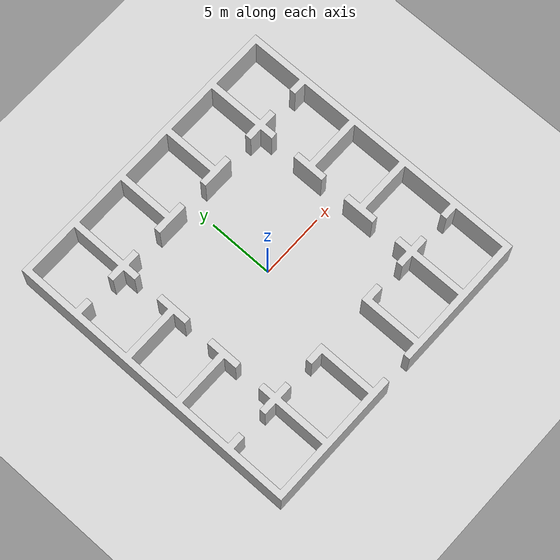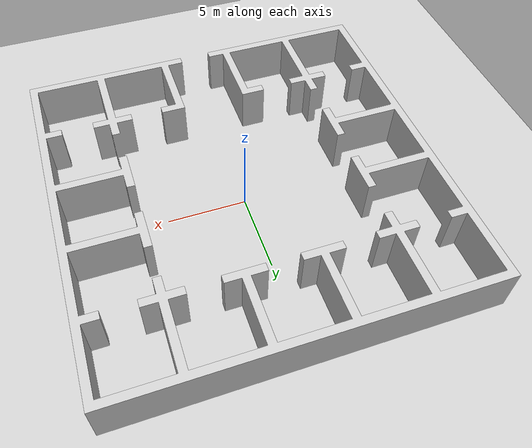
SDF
<?xml version="1.0"?>
<sdf version="1.4">
  <world name="default">
    <include>
      <uri>model://ground_plane</uri>
    </include>
    <include>
      <uri>model://sun</uri>
    </include>
    <model name="test_museum">
      <pose>0.0 0.0 0  0 0 0</pose>
      <static>true</static>
      <link name="body">
        <visual name="visual">
          <geometry>
            <mesh>
              <uri>file://Test_museum_square.dae</uri>
            </mesh>
          </geometry>
        </visual>
        <collision name="collision">
          <geometry>
            <mesh>
              <uri>file://Test_museum_square.dae</uri>
            </mesh>
          </geometry>
        </collision>
      </link>
    </model>
  </world>
</sdf>
